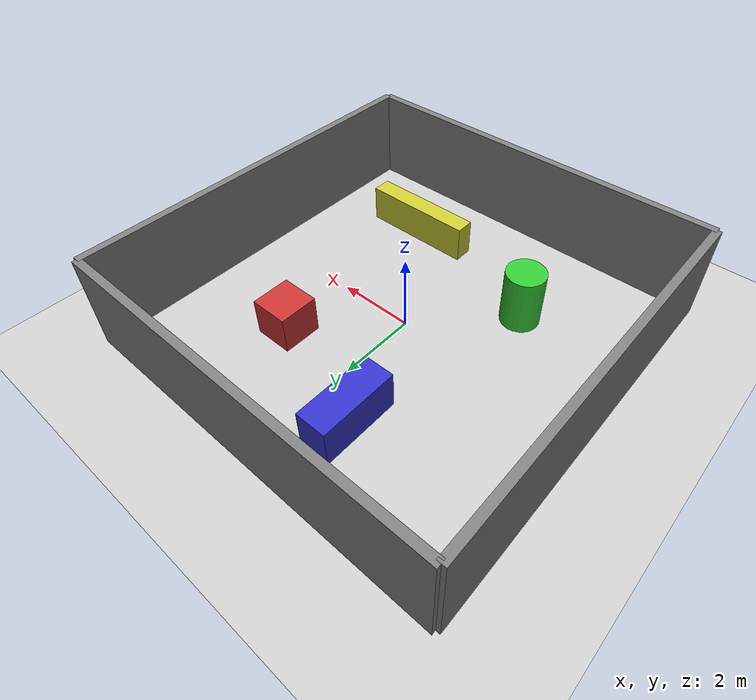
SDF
<?xml version="1.0"?>
<sdf version="1.6">
  <world name="default">

    <!-- Physics -->
    <physics type="ode">
      <real_time_update_rate>1000.0</real_time_update_rate>
      <max_step_size>0.001</max_step_size>
      <real_time_factor>1</real_time_factor>
    </physics>

    <!-- Lighting -->
    <include>
      <uri>model://sun</uri>
    </include>

    <!-- Ground Plane -->
    <include>
      <uri>model://ground_plane</uri>
    </include>

    <!-- Walls forming a simple room -->
    <!-- Left wall -->
    <model name="left_wall">
      <static>true</static>
      <link name="link">
        <collision name="collision">
          <geometry>
            <box>
              <size>0.2 10 2.5</size>
            </box>
          </geometry>
        </collision>
        <visual name="visual">
          <geometry>
            <box>
              <size>0.2 10 2.5</size>
            </box>
          </geometry>
          <material>
            <ambient>0.5 0.5 0.5 1</ambient>
            <diffuse>0.5 0.5 0.5 1</diffuse>
          </material>
        </visual>
      </link>
      <pose>-5 0 1.25 0 0 0</pose>
    </model>

    <!-- Right wall -->
    <model name="right_wall">
      <static>true</static>
      <link name="link">
        <collision name="collision">
          <geometry>
            <box>
              <size>0.2 10 2.5</size>
            </box>
          </geometry>
        </collision>
        <visual name="visual">
          <geometry>
            <box>
              <size>0.2 10 2.5</size>
            </box>
          </geometry>
          <material>
            <ambient>0.5 0.5 0.5 1</ambient>
            <diffuse>0.5 0.5 0.5 1</diffuse>
          </material>
        </visual>
      </link>
      <pose>5 0 1.25 0 0 0</pose>
    </model>

    <!-- Back wall -->
    <model name="back_wall">
      <static>true</static>
      <link name="link">
        <collision name="collision">
          <geometry>
            <box>
              <size>10 0.2 2.5</size>
            </box>
          </geometry>
        </collision>
        <visual name="visual">
          <geometry>
            <box>
              <size>10 0.2 2.5</size>
            </box>
          </geometry>
          <material>
            <ambient>0.5 0.5 0.5 1</ambient>
            <diffuse>0.5 0.5 0.5 1</diffuse>
          </material>
        </visual>
      </link>
      <pose>0 -5 1.25 0 0 0</pose>
    </model>

    <!-- Front wall -->
    <model name="front_wall">
      <static>true</static>
      <link name="link">
        <collision name="collision">
          <geometry>
            <box>
              <size>10 0.2 2.5</size>
            </box>
          </geometry>
        </collision>
        <visual name="visual">
          <geometry>
            <box>
              <size>10 0.2 2.5</size>
            </box>
          </geometry>
          <material>
            <ambient>0.5 0.5 0.5 1</ambient>
            <diffuse>0.5 0.5 0.5 1</diffuse>
          </material>
        </visual>
      </link>
      <pose>0 5 1.25 0 0 0</pose>
    </model>

    <!-- Obstacle 1 - Box -->
    <model name="obstacle_1">
      <static>true</static>
      <link name="link">
        <collision name="collision">
          <geometry>
            <box>
              <size>1 1 1</size>
            </box>
          </geometry>
        </collision>
        <visual name="visual">
          <geometry>
            <box>
              <size>1 1 1</size>
            </box>
          </geometry>
          <material>
            <ambient>0.8 0.2 0.2 1</ambient>
            <diffuse>0.8 0.2 0.2 1</diffuse>
          </material>
        </visual>
      </link>
      <pose>2 2 0.5 0 0 0</pose>
    </model>

    <!-- Obstacle 2 - Cylinder -->
    <model name="obstacle_2">
      <static>true</static>
      <link name="link">
        <collision name="collision">
          <geometry>
            <cylinder>
              <radius>0.5</radius>
              <length>1.5</length>
            </cylinder>
          </geometry>
        </collision>
        <visual name="visual">
          <geometry>
            <cylinder>
              <radius>0.5</radius>
              <length>1.5</length>
            </cylinder>
          </geometry>
          <material>
            <ambient>0.2 0.8 0.2 1</ambient>
            <diffuse>0.2 0.8 0.2 1</diffuse>
          </material>
        </visual>
      </link>
      <pose>-2 -2 0.75 0 0 0</pose>
    </model>

    <!-- Obstacle 3 - Box -->
    <model name="obstacle_3">
      <static>true</static>
      <link name="link">
        <collision name="collision">
          <geometry>
            <box>
              <size>0.8 2 1</size>
            </box>
          </geometry>
        </collision>
        <visual name="visual">
          <geometry>
            <box>
              <size>0.8 2 1</size>
            </box>
          </geometry>
          <material>
            <ambient>0.2 0.2 0.8 1</ambient>
            <diffuse>0.2 0.2 0.8 1</diffuse>
          </material>
        </visual>
      </link>
      <pose>-1 3 0.5 0 0 0</pose>
    </model>

    <!-- Obstacle 4 - Narrow passage creator -->
    <model name="obstacle_4">
      <static>true</static>
      <link name="link">
        <collision name="collision">
          <geometry>
            <box>
              <size>3 0.5 1</size>
            </box>
          </geometry>
        </collision>
        <visual name="visual">
          <geometry>
            <box>
              <size>3 0.5 1</size>
            </box>
          </geometry>
          <material>
            <ambient>0.8 0.8 0.2 1</ambient>
            <diffuse>0.8 0.8 0.2 1</diffuse>
          </material>
        </visual>
      </link>
      <pose>2 -3 0.5 0 0 0</pose>
    </model>

  </world>
</sdf>
